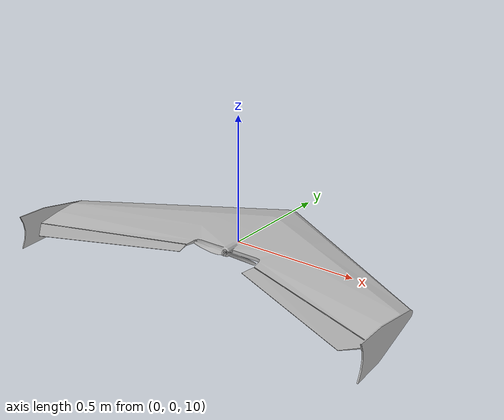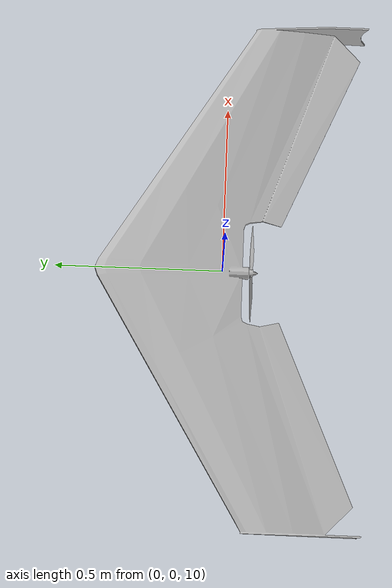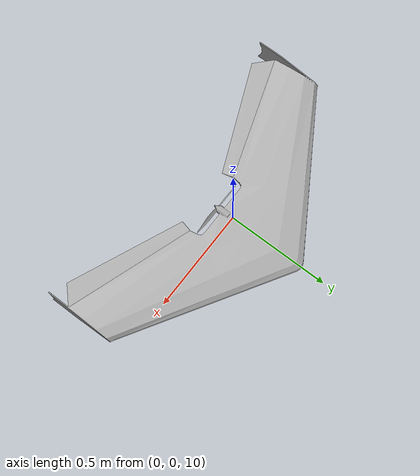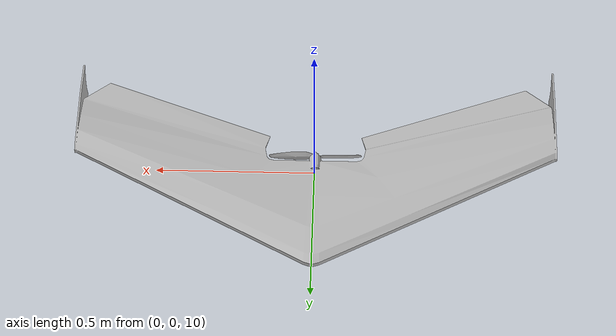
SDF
<sdf version='1.9'>
  <world name='rosplane2'>
    <plugin name='ignition::gazebo::systems::Physics' filename='ignition-gazebo-physics-system'/>
    <plugin name='ignition::gazebo::systems::SceneBroadcaster' filename='ignition-gazebo-scene-broadcaster-system'/>
    <plugin name='ignition::gazebo::systems::ApplyLinkWrench' filename='ignition-gazebo-apply-link-wrench-system'>
      <persistent>
        <entity_name>fixedwing</entity_name>
        <entity_type>model</entity_type>
        <force>0 0 0</force>
        <torque>0 0 0</torque>
      </persistent>
    </plugin>

    <gravity>0 0 -9.8</gravity>
    <magnetic_field>6e-06 2.3e-05 -4.2e-05</magnetic_field>
    <atmosphere type='adiabatic'/>
    <physics type='ode'>
      <max_step_size>0.001</max_step_size>
      <real_time_factor>1</real_time_factor>
      <real_time_update_rate>1000</real_time_update_rate>
    </physics>
    <scene>
      <ambient>0.4 0.4 0.4 1</ambient>
      <background>0.7 0.7 0.7 1</background>
      <shadows>true</shadows>
    </scene>
    <light name='sun' type='directional'>
      <pose>0 0 10 0 -0 0</pose>
      <cast_shadows>true</cast_shadows>
      <intensity>1</intensity>
      <direction>-0.5 0.1 -0.9</direction>
      <diffuse>0.8 0.8 0.8 1</diffuse>
      <specular>0.2 0.2 0.2 1</specular>
      <attenuation>
        <range>1000</range>
        <linear>0.01</linear>
        <constant>0.90000000000000002</constant>
        <quadratic>0.001</quadratic>
      </attenuation>
      <spot>
        <inner_angle>0</inner_angle>
        <outer_angle>0</outer_angle>
        <falloff>0</falloff>
      </spot>
    </light>

    <wind>
      <linear_velocity>0 0 0</linear_velocity>
    </wind>

    <model name='ground_plane'>
      <static>true</static>
      <link name='link'>
        <collision name='collision'>
          <geometry>
            <plane>
              <normal>0 0 1</normal>
              <size>100 100</size>
            </plane>
          </geometry>
          <surface>
            <friction>
              <ode/>
            </friction>
            <bounce/>
            <contact/>
          </surface>
        </collision>
        <visual name='visual'>
          <geometry>
            <plane>
              <normal>0 0 1</normal>
              <size>100 100</size>
            </plane>
          </geometry>
          <material>
            <ambient>0.8 0.8 0.8 1</ambient>
            <diffuse>0.8 0.8 0.8 1</diffuse>
            <specular>0.8 0.8 0.8 1</specular>
          </material>
        </visual>
        <pose>0 0 0 0 -0 0</pose>
        <inertial>
          <pose>0 0 0 0 -0 0</pose>
          <mass>1</mass>
          <inertia>
            <ixx>1</ixx>
            <ixy>0</ixy>
            <ixz>0</ixz>
            <iyy>1</iyy>
            <iyz>0</iyz>
            <izz>1</izz>
          </inertia>
        </inertial>
        <enable_wind>false</enable_wind>
      </link>
      <pose>0 0 0 0 -0 0</pose>
      <self_collide>false</self_collide>
    </model>

    <model name='fixedwing'>

      <link name='link'>

        <visual name='visual'>
        <pose degrees="true"> 0 0 0 0 0 180</pose>
          <geometry>
            <mesh>
              <uri>file:/src/rosplane2_sim/worlds/fixedwing.dae</uri>
            </mesh>
          </geometry>
        </visual>

        <collision name='collision'>
          <geometry>
            <mesh>
              <uri>file:/src/rosplane2_sim/worlds/fixedwing.dae</uri>
            </mesh>
          </geometry>
        </collision>

        <pose>0 0 0 0 0 0</pose>

        <inertial>
          <pose>0 0 0 0 0 0</pose>
          <mass>3.92</mass>
          <inertia>
            <ixx>.213</ixx>
            <ixy>0</ixy>
            <ixz>.04</ixz>
            <iyy>.171</iyy>
            <iyz>0</iyz>
            <izz>.350</izz>
          </inertia>
        </inertial>

        <enable_wind>false</enable_wind>

      </link>

      <pose degrees="true">0 0 10 0 0 0</pose>
      <static>false</static>
      <self_collide>true</self_collide>

      <!-- True State Odometry -->
      <plugin filename="ignition-gazebo-odometry-publisher-system"
        name="ignition::gazebo::systems::OdometryPublisher">
        <dimensions>3</dimensions>
      </plugin>

    </model>

  </world>
</sdf>
